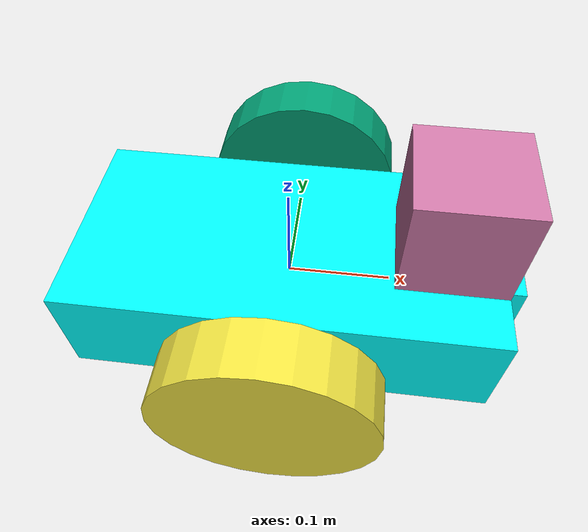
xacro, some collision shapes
<?xml version='1.0'?>

<robot name="robot" xmlns:xacro="http://www.ros.org/wiki/xacro">
  <xacro:include filename="$(find mapping)/urdf/robot.gazebo" />

  <link name="robot_footprint"></link>

  <joint name="robot_footprint_joint" type="fixed">
    <origin xyz="0 0 0" rpy="0 0 0" />
    <parent link="robot_footprint"/>
    <child link="chassis" />
  </joint>

  <link name='chassis'>
    <pose>0 0 0.1 0 0 0</pose>

    <inertial>
      <mass value="15.0"/>
      <origin xyz="0.0 0 0" rpy=" 0 0 0"/>
      <inertia
          ixx="0.1" ixy="0" ixz="0"
          iyy="0.1" iyz="0"
          izz="0.1"
      />
    </inertial>

    <collision name='collision'>
      <origin xyz="0 0 0" rpy=" 0 0 0"/>
      <geometry>
        <box size=".4 .2 .1"/>
      </geometry>
    </collision>

    <visual name='chassis_visual'>
      <origin xyz="0 0 0" rpy=" 0 0 0"/>
      <geometry>
        <box size=".4 .2 .1"/>
      </geometry>
      <material name="Cyan">
        <color rgba="0 1.0 1.0 1.0"/>
      </material>
    </visual>

    <collision name='back_caster_collision'>
      <origin xyz="-0.15 0 -0.05" rpy=" 0 0 0"/>
      <geometry>
        <sphere radius="0.049"/>
      </geometry>
      <surface>
        <friction>
          <ode>
            <mu>0</mu>
            <mu2>0</mu2>
            <slip1>1.0</slip1>
            <slip2>1.0</slip2>
          </ode>
        </friction>
      </surface>
    </collision>

    <visual name='back_caster_visual'>
      <origin xyz="-0.15 0 -0.05" rpy=" 0 0 0"/>
      <geometry>
        <sphere radius="0.049"/>
      </geometry>
      <material name="Cyan">
        <color rgba="0 1.0 1.0 1.0"/>
      </material>
    </visual>

    <collision name='front_caster_collision'>
      <origin xyz="0.15 0 -0.05" rpy=" 0 0 0"/>
      <geometry>
        <sphere radius="0.049"/>
      </geometry>
      <surface>
        <friction>
          <ode>
            <mu>0</mu>
            <mu2>0</mu2>
            <slip1>1.0</slip1>
            <slip2>1.0</slip2>
          </ode>
        </friction>
      </surface>
    </collision>

    <visual name='front_caster_visual'>
      <origin xyz="0.15 0 -0.05" rpy=" 0 0 0"/>
      <geometry>
        <sphere radius="0.049"/>
      </geometry>
      <material name="Cyan">
        <color rgba="0 1.0 1.0 1.0"/>
      </material>
    </visual>

  </link>

  <link name='left_wheel'>

    <inertial>
      <mass value="5.0"/>
      <origin xyz="0 0 0" rpy="0 1.5707 1.5707"/>
      <inertia
          ixx="0.1" ixy="0" ixz="0"
          iyy="0.1" iyz="0"
          izz="0.1"
      />
    </inertial>

    <collision name='collision'>
      <origin xyz="0 0 0" rpy="0 1.5707 1.5707"/>
      <geometry>
        <cylinder radius="0.1" length="0.05"/>
      </geometry>
    </collision>

    <visual name='chassis_visual'>
      <origin xyz="0 0 0" rpy="0 1.5707 1.5707"/>
      <geometry>
        <cylinder radius="0.1" length="0.05"/>
      </geometry>
    </visual>
  </link>

  <!--joint type="continuous" name="left_wheel_hinge"-->
  <joint type="continuous" name="left_wheel_hinge">
    <origin xyz="0 0.15 0" rpy="0 0 0"/>
    <child link="left_wheel"/>
    <parent link="chassis"/>
    <axis xyz="0 1 0" rpy="0 0 0"/>
    <limit effort="10000" velocity="1000"/>
    <joint_properties damping="1.0" friction="1.0"/>
  </joint>

  <link name='right_wheel'>

    <inertial>
      <mass value="5.0"/>
      <origin xyz="0 0 0" rpy="0 1.5707 1.5707"/>
      <inertia
          ixx="0.1" ixy="0" ixz="0"
          iyy="0.1" iyz="0"
          izz="0.1"
      />
    </inertial>

    <collision name='collision'>
      <origin xyz="0 0 0" rpy="0 1.5707 1.5707"/>
      <geometry>
        <cylinder radius="0.1" length="0.05"/>
      </geometry>
    </collision>

    <visual name='chassis_visual'>
      <origin xyz="0 0 0" rpy="0 1.5707 1.5707"/>
      <geometry>
        <cylinder radius="0.1" length="0.05"/>
      </geometry>
    </visual>
  </link>

  <!--joint type="continuous" name="left_wheel_hinge"-->
  <joint type="continuous" name="right_wheel_hinge">
    <origin xyz="0 -0.15 0" rpy="0 0 0"/>
    <child link="right_wheel"/>
    <parent link="chassis"/>
    <axis xyz="0 1 0" rpy="0 0 0"/>
    <limit effort="10000" velocity="1000"/>
    <joint_properties damping="1.0" friction="1.0"/>
  </joint>

  <!-- CAMERA -->
  <link name='camera'>

    <inertial>
      <mass value="0.1"/>
      <origin xyz="0 0 0" rpy="0 0 0"/>
      <inertia
          ixx="1e-6" ixy="0" ixz="0"
          iyy="1e-6" iyz="0"
          izz="1e-6"
      />
    </inertial>

    <collision name='collision'>
      <origin xyz="0 0 0" rpy="0 0 0"/>
      <geometry>
        <box size="0.05 0.05 0.05"/>
      </geometry>
    </collision>

    <visual name='chassis_visual'>
      <origin xyz="0 0 0" rpy="0 0 0"/>
      <geometry>
        <box size="0.05 0.05 0.05"/>
      </geometry>
      <material name="Cyan">
        <color rgba="0 1.0 1.0 1.0"/>
      </material>
    </visual>
  </link>

  <!--joint type="continuous" name="left_wheel_hinge"-->
  <joint type="fixed" name="camera_joint">
    <origin xyz="0.2 0 0" rpy="0 0 0"/>
    <child link="camera"/>
    <parent link="robot_footprint"/>
  </joint>

  <link name='camera_depth'>
    <visual name='chassis_visual'>
      <origin xyz="0 0 0" rpy="0 0 0"/>
      <geometry>
        <box size="0.05 0.05 0.05"/>
      </geometry>
      <material name="Cyan">
        <color rgba="0 1.0 1.0 1.0"/>
      </material>
    </visual>
  </link>

  <!--joint type="continuous" name="left_wheel_hinge"-->
  <joint type="fixed" name="camera_joint_correction">
    <origin xyz="0 0 0" rpy="1.57 3.14 1.57"/>
    <child link="camera_depth"/>
    <parent link="camera"/>
  </joint>

  <!-- hokuyo -->
  <link name='hokuyo'>

    <inertial>
      <mass value="0.1"/>
      <origin xyz="0 0 0" rpy="0 0 0"/>
      <inertia
          ixx="1e-6" ixy="0" ixz="0"
          iyy="1e-6" iyz="0"
          izz="1e-6"
      />
    </inertial>

    <collision name='collision'>
      <origin xyz="0 0 0" rpy="0 0 0"/>
      <geometry>
        <box size="0.1 0.1 0.1"/>
      </geometry>
    </collision>

    <visual name='chassis_visual'>
      <origin xyz="0 0 0" rpy="0 0 0"/>
      <geometry>
        <mesh filename="package://mapping/meshes/hokuyo.dae"/>
      </geometry>
    </visual>
  </link>

  <joint type="fixed" name="hokuyo_joint">
    <origin xyz="0.15 0 0.1" rpy="0 0 0"/>
    <child link="hokuyo"/>
    <parent link="chassis"/>
  </joint>

</robot>
